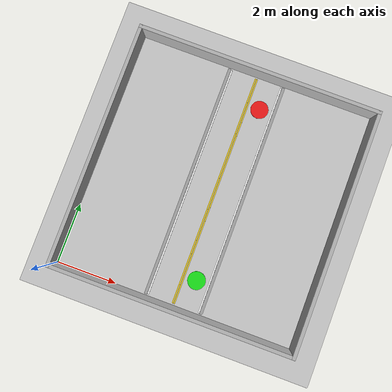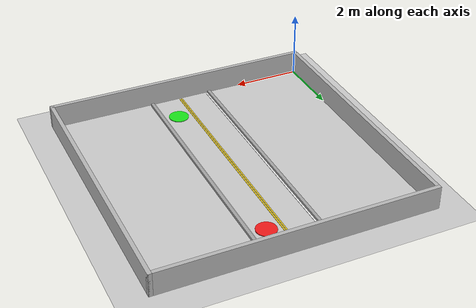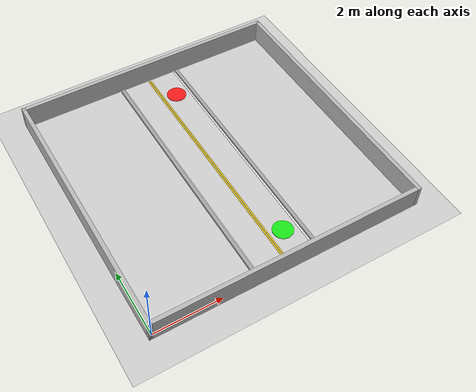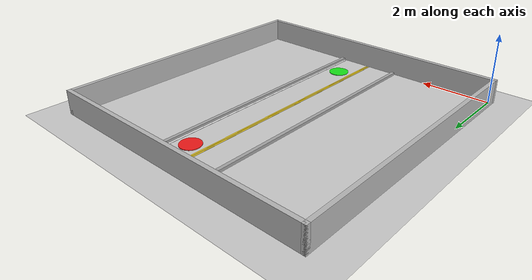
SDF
<?xml version="1.0" ?>
<sdf version="1.6">
  <world name="level0_road_straight_2way_2lane_8x8">
    <gravity>0 0 -9.8</gravity>
    <physics type="ode">
      <max_step_size>0.001</max_step_size>
      <real_time_factor>1.0</real_time_factor>
      <real_time_update_rate>1000</real_time_update_rate>
    </physics>

    <plugin name="gazebo_ros_state" filename="libgazebo_ros_state.so">
      <update_rate>50.0</update_rate>
    </plugin>

    <include><uri>model://sun</uri></include>
    <include><uri>model://ground_plane</uri></include>

    <!-- Outer walls (same dimensions as arena_8x8) -->
    <model name="a8_wall_south"><static>true</static><pose>4.0 -0.06 0.35 0 0 0</pose>
      <link name="link">
        <collision name="c"><geometry><box><size>8.24 0.12 0.7</size></box></geometry></collision>
        <visual name="v"><geometry><box><size>8.24 0.12 0.7</size></box></geometry></visual>
      </link>
    </model>
    <model name="a8_wall_north"><static>true</static><pose>4.0 8.06 0.35 0 0 0</pose>
      <link name="link">
        <collision name="c"><geometry><box><size>8.24 0.12 0.7</size></box></geometry></collision>
        <visual name="v"><geometry><box><size>8.24 0.12 0.7</size></box></geometry></visual>
      </link>
    </model>
    <model name="a8_wall_west"><static>true</static><pose>-0.06 4.0 0.35 0 0 0</pose>
      <link name="link">
        <collision name="c"><geometry><box><size>0.12 8.24 0.7</size></box></geometry></collision>
        <visual name="v"><geometry><box><size>0.12 8.24 0.7</size></box></geometry></visual>
      </link>
    </model>
    <model name="a8_wall_east"><static>true</static><pose>8.06 4.0 0.35 0 0 0</pose>
      <link name="link">
        <collision name="c"><geometry><box><size>0.12 8.24 0.7</size></box></geometry></collision>
        <visual name="v"><geometry><box><size>0.12 8.24 0.7</size></box></geometry></visual>
      </link>
    </model>

    <!-- Road parameters -->
    <!-- Road center: x=4.0, along y. Two lanes (one each direction). -->
    <!-- Use a wider carriageway than the 1-lane demo. -->
    <!-- Carriageway half width = 0.90m (total 1.80m). -->
    <!-- Curbs: width 0.10m, height 0.08m, length 7.90m (from y=0.05 to 7.95) -->
    <model name="road2_curb_left"><static>true</static><pose>3.05 4.00 0.04 0 0 0</pose>
      <link name="link">
        <collision name="c"><geometry><box><size>0.10 7.90 0.08</size></box></geometry></collision>
        <visual name="v"><geometry><box><size>0.10 7.90 0.08</size></box></geometry>
          <material><ambient>0.55 0.55 0.55 1</ambient><diffuse>0.65 0.65 0.65 1</diffuse></material>
        </visual>
      </link>
    </model>
    <model name="road2_curb_right"><static>true</static><pose>4.95 4.00 0.04 0 0 0</pose>
      <link name="link">
        <collision name="c"><geometry><box><size>0.10 7.90 0.08</size></box></geometry></collision>
        <visual name="v"><geometry><box><size>0.10 7.90 0.08</size></box></geometry>
          <material><ambient>0.55 0.55 0.55 1</ambient><diffuse>0.65 0.65 0.65 1</diffuse></material>
        </visual>
      </link>
    </model>

    <!-- White edge lines (visual only) -->
    <model name="road2_edge_white_left"><static>true</static><pose>3.12 4.00 0.005 0 0 0</pose>
      <link name="link">
        <visual name="v">
          <geometry><box><size>0.06 7.90 0.01</size></box></geometry>
          <material><ambient>0.90 0.90 0.90 1</ambient><diffuse>0.98 0.98 0.98 1</diffuse></material>
        </visual>
      </link>
    </model>
    <model name="road2_edge_white_right"><static>true</static><pose>4.88 4.00 0.005 0 0 0</pose>
      <link name="link">
        <visual name="v">
          <geometry><box><size>0.06 7.90 0.01</size></box></geometry>
          <material><ambient>0.90 0.90 0.90 1</ambient><diffuse>0.98 0.98 0.98 1</diffuse></material>
        </visual>
      </link>
    </model>

    <!-- Double yellow center lines (visual only) -->
    <model name="road2_center_yellow_a"><static>true</static><pose>3.97 4.00 0.005 0 0 0</pose>
      <link name="link">
        <visual name="v">
          <geometry><box><size>0.04 7.90 0.01</size></box></geometry>
          <material><ambient>0.90 0.75 0.05 1</ambient><diffuse>0.95 0.82 0.10 1</diffuse></material>
        </visual>
      </link>
    </model>
    <model name="road2_center_yellow_b"><static>true</static><pose>4.03 4.00 0.005 0 0 0</pose>
      <link name="link">
        <visual name="v">
          <geometry><box><size>0.04 7.90 0.01</size></box></geometry>
          <material><ambient>0.90 0.75 0.05 1</ambient><diffuse>0.95 0.82 0.10 1</diffuse></material>
        </visual>
      </link>
    </model>

    <!-- Spawn/goal markers on the right lane (x>4). -->
    <model name="road2_start_marker"><static>true</static><pose>4.45 1.00 0.01 0 0 0</pose>
      <link name="link"><visual name="visual"><geometry><cylinder><radius>0.30</radius><length>0.02</length></cylinder></geometry>
        <material><ambient>0.1 0.8 0.1 1</ambient><diffuse>0.1 0.9 0.1 1</diffuse></material></visual></link></model>
    <model name="road2_goal_marker"><static>true</static><pose>4.45 7.00 0.01 0 0 0</pose>
      <link name="link"><visual name="visual"><geometry><cylinder><radius>0.30</radius><length>0.02</length></cylinder></geometry>
        <material><ambient>0.85 0.1 0.1 1</ambient><diffuse>0.95 0.1 0.1 1</diffuse></material></visual></link></model>

    <gui fullscreen="0"><camera name="user_camera"><pose>4 -9 12 0 0.52 1.57</pose></camera></gui>
  </world>
</sdf>
